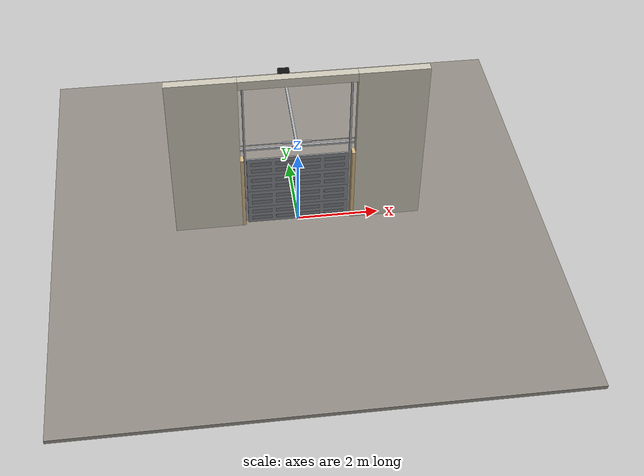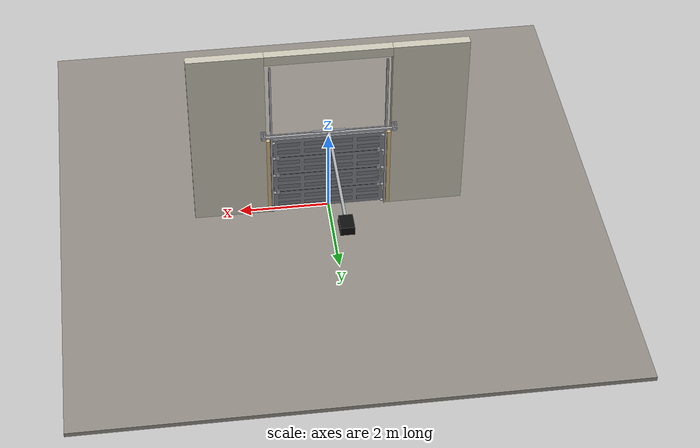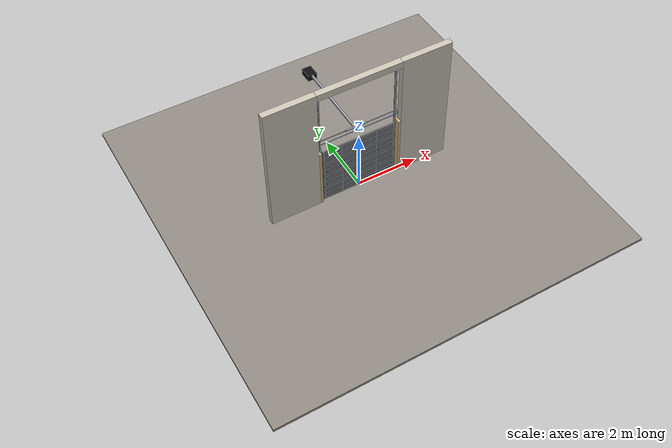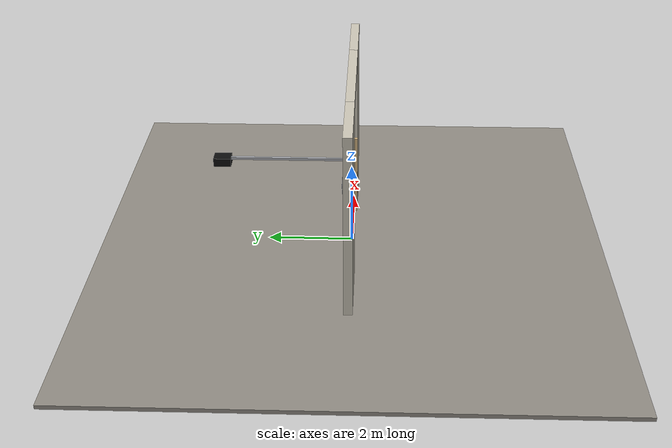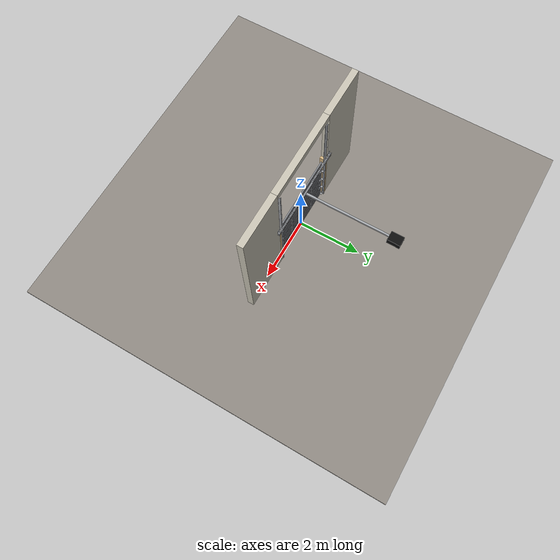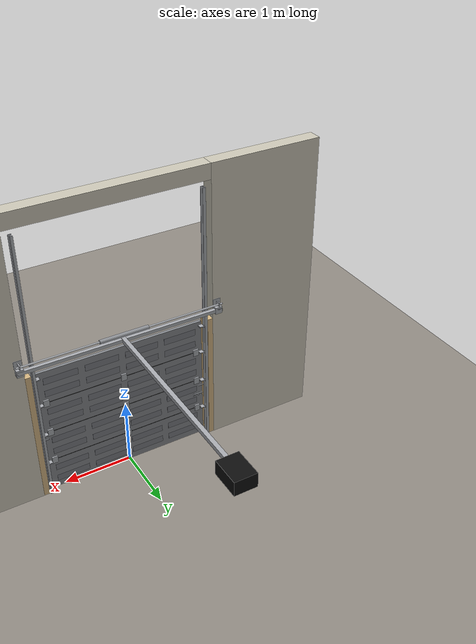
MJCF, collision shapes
<?xml version="1.0" ?>
<mujoco model="db0605_garage_sectional_full">
  <compiler angle="radian" meshdir="../../hardware" texturedir="../../textures" autolimits="true" inertiafromgeom="false"/>
  <option timestep="0.002" integrator="implicitfast" cone="elliptic" impratio="10" noslip_iterations="3">
    <flag multiccd="enable"/>
  </option>
  <size memory="16M"/>
  <default>
    <geom condim="4" solref="0.005 1" solimp="0.95 0.99 0.001"/>
    <joint solreflimit="0.005 1" solimplimit="0.95 0.99 0.001"/>
    <tendon solreflimit="0.005 1"/>
    <equality solref="0.002 1"/>
  </default>
  <visual>
    <headlight ambient="0.4 0.4 0.4" diffuse="0.7 0.7 0.7" specular="0.2 0.2 0.2"/>
    <quality shadowsize="4096"/>
    <map znear="0.01" zfar="60"/>
  </visual>
  <asset>
    <mesh name="lever_01c630149d" file="lever_01c630149d.obj"/>
    <material name="mat_floor" rgba="0.55 0.53 0.5 1" specular="0.2" shininess="0.15" reflectance="0"/>
    <material name="mat_wall" rgba="0.78 0.76 0.7 1" specular="0.2" shininess="0.1" reflectance="0"/>
    <material name="mat_frame" rgba="0.82 0.7 0.5 1" specular="0.2" shininess="0.45" reflectance="0"/>
    <material name="mat_track" rgba="0.65 0.66 0.68 1" specular="0.74" shininess="0.5" reflectance="0.36"/>
    <material name="mat_section_0" rgba="0.5 0.51 0.53 1" specular="0.23" shininess="0.46" reflectance="0.02"/>
    <material name="mat_section_0_panel" rgba="0.46 0.469 0.488 1" specular="0.23" shininess="0.46" reflectance="0.02"/>
    <material name="mat_section_1" rgba="0.5 0.51 0.53 1" specular="0.23" shininess="0.46" reflectance="0.02"/>
    <material name="mat_section_1_panel" rgba="0.46 0.469 0.488 1" specular="0.23" shininess="0.46" reflectance="0.02"/>
    <material name="mat_hinge_line" rgba="0.2 0.2 0.2 1" specular="0.2" shininess="0.3" reflectance="0"/>
    <material name="mat_section_2" rgba="0.5 0.51 0.53 1" specular="0.23" shininess="0.46" reflectance="0.02"/>
    <material name="mat_section_2_panel" rgba="0.46 0.469 0.488 1" specular="0.23" shininess="0.46" reflectance="0.02"/>
    <material name="mat_section_3" rgba="0.5 0.51 0.53 1" specular="0.23" shininess="0.46" reflectance="0.02"/>
    <material name="mat_section_3_panel" rgba="0.46 0.469 0.488 1" specular="0.23" shininess="0.46" reflectance="0.02"/>
    <material name="mat_spring" rgba="0.55 0.56 0.58 1" specular="0.8" shininess="0.55" reflectance="0.4"/>
    <material name="mat_opener" rgba="0.05 0.05 0.05 1" specular="0.38" shininess="0.3" reflectance="0.12"/>
    <material name="mat_op_black_matte_metal" rgba="0.05 0.05 0.05 1" specular="0.38" shininess="0.3" reflectance="0.12"/>
    <material name="mat_trim" rgba="0.85 0.66 0.3 1" specular="0.8" shininess="0.75" reflectance="0.4"/>
    <material name="mat_lockbar" rgba="0.65 0.66 0.68 1" specular="0.74" shininess="0.5" reflectance="0.36"/>
    <material name="mat_slidelock" rgba="0.65 0.66 0.68 1" specular="0.74" shininess="0.5" reflectance="0.36"/>
    <texture name="skybox" type="skybox" builtin="gradient" rgb1="0.6 0.7 0.85" rgb2="0.9 0.92 0.95" width="256" height="256"/>
  </asset>
  <worldbody>
    <light name="sun" pos="1.5 -2.5 4" dir="-0.3 0.5 -0.8" directional="true" diffuse="0.8 0.8 0.8" specular="0.3 0.3 0.3" castshadow="true"/>
    <light name="fill" pos="-1.5 2.5 3" dir="0.3 -0.5 -0.7" directional="true" diffuse="0.35 0.35 0.4" castshadow="false"/>
    <camera name="robot_view" pos="0 -2.959375 1.853625" xyaxes="1 0 0 0 0.26963 0.962964" fovy="52"/>
    <camera name="far_view" pos="0 2.959375 1.853625" xyaxes="-1 0 0 0 -0.26963 0.962964" fovy="52"/>
    <camera name="iso" pos="2.249125 -2.485875 2.327125" xyaxes="0.741536 0.670913 0 -0.242917 0.268487 0.932151" fovy="46"/>
    <camera name="detail_handle" pos="0.2115 -1.1625 1.25" xyaxes="0.975133 0.221621 0 -0.065674 0.288965 0.955084" fovy="38"/>
    <geom name="floor" type="box" size="6 6 0.05" pos="0 0 -0.05" material="mat_floor" group="0" contype="1" conaffinity="1" friction="0.8 0.005 0.0001" density="2400"/>
    <geom name="wall_left" type="box" size="0.8175 0.1 2.175" pos="-2.1825 0 2.175" material="mat_wall" group="0" contype="1" conaffinity="1" friction="0.6 0.005 0.0001" density="800"/>
    <geom name="wall_right" type="box" size="0.8175 0.1 2.175" pos="2.1825 0 2.175" material="mat_wall" group="0" contype="1" conaffinity="1" friction="0.6 0.005 0.0001" density="800"/>
    <geom name="wall_header" type="box" size="1.365 0.1 0.11" pos="0 0 4.24" material="mat_wall" group="0" contype="1" conaffinity="1" friction="0.6 0.005 0.0001" density="800"/>
    <geom name="garage_jamb_l" type="box" size="0.04 0.1 1.025" pos="-1.325 0 1.025" material="mat_frame" group="0" contype="1" conaffinity="1" friction="0.6 0.005 0.0001" density="400"/>
    <geom name="garage_jamb_r" type="box" size="0.04 0.1 1.025" pos="1.325 0 1.025" material="mat_frame" group="0" contype="1" conaffinity="1" friction="0.6 0.005 0.0001" density="400"/>
    <geom name="track_l" type="box" size="0.004 0.033 2.025" pos="-1.27 0.0825 2.025" material="mat_track" group="0" contype="1" conaffinity="1" friction="0.6 0.005 0.0001" density="7850"/>
    <geom name="track_l_flange_n" type="box" size="0.022 0.004 2.025" pos="-1.252 0.0535 2.025" material="mat_track" group="0" contype="1" conaffinity="1" friction="0.6 0.005 0.0001" density="7850"/>
    <geom name="track_l_flange_p" type="box" size="0.022 0.004 2.025" pos="-1.252 0.1115 2.025" material="mat_track" group="0" contype="1" conaffinity="1" friction="0.6 0.005 0.0001" density="7850"/>
    <geom name="track_r" type="box" size="0.004 0.033 2.025" pos="1.27 0.0825 2.025" material="mat_track" group="0" contype="1" conaffinity="1" friction="0.6 0.005 0.0001" density="7850"/>
    <geom name="track_r_flange_n" type="box" size="0.022 0.004 2.025" pos="1.252 0.0535 2.025" material="mat_track" group="0" contype="1" conaffinity="1" friction="0.6 0.005 0.0001" density="7850"/>
    <geom name="track_r_flange_p" type="box" size="0.022 0.004 2.025" pos="1.252 0.1115 2.025" material="mat_track" group="0" contype="1" conaffinity="1" friction="0.6 0.005 0.0001" density="7850"/>
    <geom name="torsion_shaft" type="cylinder" size="0.013 1.475" pos="0 0.17 2.3" quat="0.707107 0 0.707107 0" material="mat_track" group="0" contype="1" conaffinity="1" friction="0.6 0.005 0.0001" density="7850"/>
    <geom name="torsion_spring" type="cylinder" size="0.03 0.35" pos="0 0.17 2.3" quat="0.707107 0 0.707107 0" material="mat_spring" group="1" contype="0" conaffinity="0" density="7850"/>
    <geom name="torsion_bearing_plate_l" type="box" size="0.055 0.004 0.055" pos="-1.425 0.104 2.3" material="mat_track" group="1" contype="0" conaffinity="0" density="7850"/>
    <geom name="torsion_bearing_arm_l" type="box" size="0.008 0.049 0.03" pos="-1.425 0.139 2.3" material="mat_track" group="1" contype="0" conaffinity="0" density="7850"/>
    <geom name="torsion_bearing_plate_r" type="box" size="0.055 0.004 0.055" pos="1.425 0.104 2.3" material="mat_track" group="1" contype="0" conaffinity="0" density="7850"/>
    <geom name="torsion_bearing_arm_r" type="box" size="0.008 0.049 0.03" pos="1.425 0.139 2.3" material="mat_track" group="1" contype="0" conaffinity="0" density="7850"/>
    <geom name="opener_header_angle" type="box" size="1.48 0.025 0.025" pos="0 0.145 2.2" material="mat_track" group="1" contype="0" conaffinity="0" density="7850"/>
    <geom name="opener_header_gusset_l" type="box" size="0.05 0.035 0.05" pos="-1.425 0.135 2.2" material="mat_track" group="1" contype="0" conaffinity="0" density="7850"/>
    <geom name="opener_header_gusset_r" type="box" size="0.05 0.035 0.05" pos="1.425 0.135 2.2" material="mat_track" group="1" contype="0" conaffinity="0" density="7850"/>
    <geom name="opener_rail" type="box" size="0.03 1.44 0.03" pos="0 1.56 2.2" material="mat_track" group="0" contype="1" conaffinity="1" friction="0.6 0.005 0.0001" density="7850"/>
    <geom name="opener_unit" type="box" size="0.15 0.2 0.1" pos="0 3 2.15" material="mat_opener" group="0" contype="1" conaffinity="1" friction="0.6 0.005 0.0001" density="500"/>
    <geom name="slide_lock_keeper_leg_n" type="box" size="0.007 0.0025 0.0155" pos="-1.265 0.034 0.7715" quat="0 0 -0.707107 0.707107" material="mat_track" group="0" contype="1" conaffinity="1" friction="0.6 0.005 0.0001" density="7800"/>
    <geom name="slide_lock_keeper_leg_p" type="box" size="0.007 0.0025 0.0155" pos="-1.265 0.034 0.7485" quat="0 0 -0.707107 0.707107" material="mat_track" group="0" contype="1" conaffinity="1" friction="0.6 0.005 0.0001" density="7800"/>
    <geom name="slide_lock_keeper_bridge" type="box" size="0.007 0.014 0.0025" pos="-1.265 0.021 0.76" quat="0 0 -0.707107 0.707107" material="mat_track" group="0" contype="1" conaffinity="1" friction="0.6 0.005 0.0001" density="7800"/>
    <geom name="slide_lock_keeper_base" type="box" size="0.015 0.02 0.001" pos="-1.265 0.0485 0.76" quat="0 0 -0.707107 0.707107" material="mat_track" group="1" contype="0" conaffinity="0" density="7800"/>
    <site name="approach_point" pos="0 -2 0" quat="1 0 0 0" size="0.05" rgba="0.2 0.9 0.2 0.5" group="4"/>
    <site name="goal_point" pos="0 2 0" quat="1 0 0 0" size="0.05" rgba="0.2 0.9 0.2 0.5" group="4"/>
    <site name="door_plane_center" pos="0 0 1.025" quat="1 0 0 0" size="0.02" rgba="0.2 0.9 0.2 0.5" group="4"/>
    <body name="door" pos="0 0 0">
      <inertial pos="-0.002268 0.011818 1.008917" mass="52.987417" quat="0.707152 -0.707061 -0.000584 -0.000626" diaginertia="16.955953978 34.441994544 51.328871502"/>
      <joint name="door_slide" type="slide" axis="0 0 1" limited="true" range="0 1.95" damping="4.6824" frictionloss="21.044286" stiffness="48.580327" springref="6.5" armature="0.5"/>
      <geom name="section_0_slab" type="box" size="1.22 0.0225 0.25" pos="0 0 0.26" material="mat_section_0" group="0" contype="1" conaffinity="1" friction="0.4 0.005 0.0001" density="1"/>
      <geom name="section_0_panel_0_n" type="box" size="0.2425 0.003 0.05" pos="-0.8775 -0.0255 0.16" material="mat_section_0_panel" group="1" contype="0" conaffinity="0" density="1"/>
      <geom name="section_0_panel_0_p" type="box" size="0.2425 0.003 0.05" pos="-0.8775 0.0255 0.16" material="mat_section_0_panel" group="1" contype="0" conaffinity="0" density="1"/>
      <geom name="section_0_panel_1_n" type="box" size="0.2425 0.003 0.05" pos="-0.2925 -0.0255 0.16" material="mat_section_0_panel" group="1" contype="0" conaffinity="0" density="1"/>
      <geom name="section_0_panel_1_p" type="box" size="0.2425 0.003 0.05" pos="-0.2925 0.0255 0.16" material="mat_section_0_panel" group="1" contype="0" conaffinity="0" density="1"/>
      <geom name="section_0_panel_2_n" type="box" size="0.2425 0.003 0.05" pos="0.2925 -0.0255 0.16" material="mat_section_0_panel" group="1" contype="0" conaffinity="0" density="1"/>
      <geom name="section_0_panel_2_p" type="box" size="0.2425 0.003 0.05" pos="0.2925 0.0255 0.16" material="mat_section_0_panel" group="1" contype="0" conaffinity="0" density="1"/>
      <geom name="section_0_panel_3_n" type="box" size="0.2425 0.003 0.05" pos="0.8775 -0.0255 0.16" material="mat_section_0_panel" group="1" contype="0" conaffinity="0" density="1"/>
      <geom name="section_0_panel_3_p" type="box" size="0.2425 0.003 0.05" pos="0.8775 0.0255 0.16" material="mat_section_0_panel" group="1" contype="0" conaffinity="0" density="1"/>
      <geom name="section_0_panel_4_n" type="box" size="0.2425 0.003 0.05" pos="-0.8775 -0.0255 0.36" material="mat_section_0_panel" group="1" contype="0" conaffinity="0" density="1"/>
      <geom name="section_0_panel_4_p" type="box" size="0.2425 0.003 0.05" pos="-0.8775 0.0255 0.36" material="mat_section_0_panel" group="1" contype="0" conaffinity="0" density="1"/>
      <geom name="section_0_panel_5_n" type="box" size="0.2425 0.003 0.05" pos="-0.2925 -0.0255 0.36" material="mat_section_0_panel" group="1" contype="0" conaffinity="0" density="1"/>
      <geom name="section_0_panel_5_p" type="box" size="0.2425 0.003 0.05" pos="-0.2925 0.0255 0.36" material="mat_section_0_panel" group="1" contype="0" conaffinity="0" density="1"/>
      <geom name="section_0_panel_6_n" type="box" size="0.2425 0.003 0.05" pos="0.2925 -0.0255 0.36" material="mat_section_0_panel" group="1" contype="0" conaffinity="0" density="1"/>
      <geom name="section_0_panel_6_p" type="box" size="0.2425 0.003 0.05" pos="0.2925 0.0255 0.36" material="mat_section_0_panel" group="1" contype="0" conaffinity="0" density="1"/>
      <geom name="section_0_panel_7_n" type="box" size="0.2425 0.003 0.05" pos="0.8775 -0.0255 0.36" material="mat_section_0_panel" group="1" contype="0" conaffinity="0" density="1"/>
      <geom name="section_0_panel_7_p" type="box" size="0.2425 0.003 0.05" pos="0.8775 0.0255 0.36" material="mat_section_0_panel" group="1" contype="0" conaffinity="0" density="1"/>
      <geom name="section_1_slab" type="box" size="1.22 0.0225 0.25" pos="0 0 0.76" material="mat_section_1" group="0" contype="1" conaffinity="1" friction="0.4 0.005 0.0001" density="1"/>
      <geom name="section_1_panel_0_n" type="box" size="0.2425 0.003 0.05" pos="-0.8775 -0.0255 0.66" material="mat_section_1_panel" group="1" contype="0" conaffinity="0" density="1"/>
      <geom name="section_1_panel_0_p" type="box" size="0.2425 0.003 0.05" pos="-0.8775 0.0255 0.66" material="mat_section_1_panel" group="1" contype="0" conaffinity="0" density="1"/>
      <geom name="section_1_panel_1_n" type="box" size="0.2425 0.003 0.05" pos="-0.2925 -0.0255 0.66" material="mat_section_1_panel" group="1" contype="0" conaffinity="0" density="1"/>
      <geom name="section_1_panel_1_p" type="box" size="0.2425 0.003 0.05" pos="-0.2925 0.0255 0.66" material="mat_section_1_panel" group="1" contype="0" conaffinity="0" density="1"/>
      <geom name="section_1_panel_2_n" type="box" size="0.2425 0.003 0.05" pos="0.2925 -0.0255 0.66" material="mat_section_1_panel" group="1" contype="0" conaffinity="0" density="1"/>
      <geom name="section_1_panel_2_p" type="box" size="0.2425 0.003 0.05" pos="0.2925 0.0255 0.66" material="mat_section_1_panel" group="1" contype="0" conaffinity="0" density="1"/>
      <geom name="section_1_panel_3_n" type="box" size="0.2425 0.003 0.05" pos="0.8775 -0.0255 0.66" material="mat_section_1_panel" group="1" contype="0" conaffinity="0" density="1"/>
      <geom name="section_1_panel_3_p" type="box" size="0.2425 0.003 0.05" pos="0.8775 0.0255 0.66" material="mat_section_1_panel" group="1" contype="0" conaffinity="0" density="1"/>
      <geom name="section_1_panel_4_n" type="box" size="0.2425 0.003 0.05" pos="-0.8775 -0.0255 0.86" material="mat_section_1_panel" group="1" contype="0" conaffinity="0" density="1"/>
      <geom name="section_1_panel_4_p" type="box" size="0.2425 0.003 0.05" pos="-0.8775 0.0255 0.86" material="mat_section_1_panel" group="1" contype="0" conaffinity="0" density="1"/>
      <geom name="section_1_panel_5_n" type="box" size="0.2425 0.003 0.05" pos="-0.2925 -0.0255 0.86" material="mat_section_1_panel" group="1" contype="0" conaffinity="0" density="1"/>
      <geom name="section_1_panel_5_p" type="box" size="0.2425 0.003 0.05" pos="-0.2925 0.0255 0.86" material="mat_section_1_panel" group="1" contype="0" conaffinity="0" density="1"/>
      <geom name="section_1_panel_6_n" type="box" size="0.2425 0.003 0.05" pos="0.2925 -0.0255 0.86" material="mat_section_1_panel" group="1" contype="0" conaffinity="0" density="1"/>
      <geom name="section_1_panel_6_p" type="box" size="0.2425 0.003 0.05" pos="0.2925 0.0255 0.86" material="mat_section_1_panel" group="1" contype="0" conaffinity="0" density="1"/>
      <geom name="section_1_panel_7_n" type="box" size="0.2425 0.003 0.05" pos="0.8775 -0.0255 0.86" material="mat_section_1_panel" group="1" contype="0" conaffinity="0" density="1"/>
      <geom name="section_1_panel_7_p" type="box" size="0.2425 0.003 0.05" pos="0.8775 0.0255 0.86" material="mat_section_1_panel" group="1" contype="0" conaffinity="0" density="1"/>
      <geom name="section_hinge_line_1" type="box" size="1.2 0.001 0.004" pos="0 0.0235 0.51" material="mat_hinge_line" group="1" contype="0" conaffinity="0" density="1"/>
      <geom name="section_hinge_1_132" type="box" size="0.04 0.01 0.05" pos="-1.12 0.0325 0.51" material="mat_track" group="1" contype="0" conaffinity="0" density="7850"/>
      <geom name="section_hinge_1_244" type="box" size="0.04 0.01 0.05" pos="0 0.0325 0.51" material="mat_track" group="1" contype="0" conaffinity="0" density="7850"/>
      <geom name="section_hinge_1_355" type="box" size="0.04 0.01 0.05" pos="1.12 0.0325 0.51" material="mat_track" group="1" contype="0" conaffinity="0" density="7850"/>
      <geom name="section_2_slab" type="box" size="1.22 0.0225 0.25" pos="0 0 1.26" material="mat_section_2" group="0" contype="1" conaffinity="1" friction="0.4 0.005 0.0001" density="1"/>
      <geom name="section_2_panel_0_n" type="box" size="0.2425 0.003 0.05" pos="-0.8775 -0.0255 1.16" material="mat_section_2_panel" group="1" contype="0" conaffinity="0" density="1"/>
      <geom name="section_2_panel_0_p" type="box" size="0.2425 0.003 0.05" pos="-0.8775 0.0255 1.16" material="mat_section_2_panel" group="1" contype="0" conaffinity="0" density="1"/>
      <geom name="section_2_panel_1_n" type="box" size="0.2425 0.003 0.05" pos="-0.2925 -0.0255 1.16" material="mat_section_2_panel" group="1" contype="0" conaffinity="0" density="1"/>
      <geom name="section_2_panel_1_p" type="box" size="0.2425 0.003 0.05" pos="-0.2925 0.0255 1.16" material="mat_section_2_panel" group="1" contype="0" conaffinity="0" density="1"/>
      <geom name="section_2_panel_2_n" type="box" size="0.2425 0.003 0.05" pos="0.2925 -0.0255 1.16" material="mat_section_2_panel" group="1" contype="0" conaffinity="0" density="1"/>
      <geom name="section_2_panel_2_p" type="box" size="0.2425 0.003 0.05" pos="0.2925 0.0255 1.16" material="mat_section_2_panel" group="1" contype="0" conaffinity="0" density="1"/>
      <geom name="section_2_panel_3_n" type="box" size="0.2425 0.003 0.05" pos="0.8775 -0.0255 1.16" material="mat_section_2_panel" group="1" contype="0" conaffinity="0" density="1"/>
      <geom name="section_2_panel_3_p" type="box" size="0.2425 0.003 0.05" pos="0.8775 0.0255 1.16" material="mat_section_2_panel" group="1" contype="0" conaffinity="0" density="1"/>
      <geom name="section_2_panel_4_n" type="box" size="0.2425 0.003 0.05" pos="-0.8775 -0.0255 1.36" material="mat_section_2_panel" group="1" contype="0" conaffinity="0" density="1"/>
      <geom name="section_2_panel_4_p" type="box" size="0.2425 0.003 0.05" pos="-0.8775 0.0255 1.36" material="mat_section_2_panel" group="1" contype="0" conaffinity="0" density="1"/>
      <geom name="section_2_panel_5_n" type="box" size="0.2425 0.003 0.05" pos="-0.2925 -0.0255 1.36" material="mat_section_2_panel" group="1" contype="0" conaffinity="0" density="1"/>
      <geom name="section_2_panel_5_p" type="box" size="0.2425 0.003 0.05" pos="-0.2925 0.0255 1.36" material="mat_section_2_panel" group="1" contype="0" conaffinity="0" density="1"/>
      <geom name="section_2_panel_6_n" type="box" size="0.2425 0.003 0.05" pos="0.2925 -0.0255 1.36" material="mat_section_2_panel" group="1" contype="0" conaffinity="0" density="1"/>
      <geom name="section_2_panel_6_p" type="box" size="0.2425 0.003 0.05" pos="0.2925 0.0255 1.36" material="mat_section_2_panel" group="1" contype="0" conaffinity="0" density="1"/>
      <geom name="section_2_panel_7_n" type="box" size="0.2425 0.003 0.05" pos="0.8775 -0.0255 1.36" material="mat_section_2_panel" group="1" contype="0" conaffinity="0" density="1"/>
      <geom name="section_2_panel_7_p" type="box" size="0.2425 0.003 0.05" pos="0.8775 0.0255 1.36" material="mat_section_2_panel" group="1" contype="0" conaffinity="0" density="1"/>
      <geom name="section_hinge_line_2" type="box" size="1.2 0.001 0.004" pos="0 0.0235 1.01" material="mat_hinge_line" group="1" contype="0" conaffinity="0" density="1"/>
      <geom name="section_hinge_2_132" type="box" size="0.04 0.01 0.05" pos="-1.12 0.0325 1.01" material="mat_track" group="1" contype="0" conaffinity="0" density="7850"/>
      <geom name="section_hinge_2_244" type="box" size="0.04 0.01 0.05" pos="0 0.0325 1.01" material="mat_track" group="1" contype="0" conaffinity="0" density="7850"/>
      <geom name="section_hinge_2_355" type="box" size="0.04 0.01 0.05" pos="1.12 0.0325 1.01" material="mat_track" group="1" contype="0" conaffinity="0" density="7850"/>
      <geom name="section_3_slab" type="box" size="1.22 0.0225 0.25" pos="0 0 1.76" material="mat_section_3" group="0" contype="1" conaffinity="1" friction="0.4 0.005 0.0001" density="1"/>
      <geom name="section_3_panel_0_n" type="box" size="0.2425 0.003 0.05" pos="-0.8775 -0.0255 1.66" material="mat_section_3_panel" group="1" contype="0" conaffinity="0" density="1"/>
      <geom name="section_3_panel_0_p" type="box" size="0.2425 0.003 0.05" pos="-0.8775 0.0255 1.66" material="mat_section_3_panel" group="1" contype="0" conaffinity="0" density="1"/>
      <geom name="section_3_panel_1_n" type="box" size="0.2425 0.003 0.05" pos="-0.2925 -0.0255 1.66" material="mat_section_3_panel" group="1" contype="0" conaffinity="0" density="1"/>
      <geom name="section_3_panel_1_p" type="box" size="0.2425 0.003 0.05" pos="-0.2925 0.0255 1.66" material="mat_section_3_panel" group="1" contype="0" conaffinity="0" density="1"/>
      <geom name="section_3_panel_2_n" type="box" size="0.2425 0.003 0.05" pos="0.2925 -0.0255 1.66" material="mat_section_3_panel" group="1" contype="0" conaffinity="0" density="1"/>
      <geom name="section_3_panel_2_p" type="box" size="0.2425 0.003 0.05" pos="0.2925 0.0255 1.66" material="mat_section_3_panel" group="1" contype="0" conaffinity="0" density="1"/>
      <geom name="section_3_panel_3_n" type="box" size="0.2425 0.003 0.05" pos="0.8775 -0.0255 1.66" material="mat_section_3_panel" group="1" contype="0" conaffinity="0" density="1"/>
      <geom name="section_3_panel_3_p" type="box" size="0.2425 0.003 0.05" pos="0.8775 0.0255 1.66" material="mat_section_3_panel" group="1" contype="0" conaffinity="0" density="1"/>
      <geom name="section_3_panel_4_n" type="box" size="0.2425 0.003 0.05" pos="-0.8775 -0.0255 1.86" material="mat_section_3_panel" group="1" contype="0" conaffinity="0" density="1"/>
      <geom name="section_3_panel_4_p" type="box" size="0.2425 0.003 0.05" pos="-0.8775 0.0255 1.86" material="mat_section_3_panel" group="1" contype="0" conaffinity="0" density="1"/>
      <geom name="section_3_panel_5_n" type="box" size="0.2425 0.003 0.05" pos="-0.2925 -0.0255 1.86" material="mat_section_3_panel" group="1" contype="0" conaffinity="0" density="1"/>
      <geom name="section_3_panel_5_p" type="box" size="0.2425 0.003 0.05" pos="-0.2925 0.0255 1.86" material="mat_section_3_panel" group="1" contype="0" conaffinity="0" density="1"/>
      <geom name="section_3_panel_6_n" type="box" size="0.2425 0.003 0.05" pos="0.2925 -0.0255 1.86" material="mat_section_3_panel" group="1" contype="0" conaffinity="0" density="1"/>
      <geom name="section_3_panel_6_p" type="box" size="0.2425 0.003 0.05" pos="0.2925 0.0255 1.86" material="mat_section_3_panel" group="1" contype="0" conaffinity="0" density="1"/>
      <geom name="section_3_panel_7_n" type="box" size="0.2425 0.003 0.05" pos="0.8775 -0.0255 1.86" material="mat_section_3_panel" group="1" contype="0" conaffinity="0" density="1"/>
      <geom name="section_3_panel_7_p" type="box" size="0.2425 0.003 0.05" pos="0.8775 0.0255 1.86" material="mat_section_3_panel" group="1" contype="0" conaffinity="0" density="1"/>
      <geom name="section_hinge_line_3" type="box" size="1.2 0.001 0.004" pos="0 0.0235 1.51" material="mat_hinge_line" group="1" contype="0" conaffinity="0" density="1"/>
      <geom name="section_hinge_3_132" type="box" size="0.04 0.01 0.05" pos="-1.12 0.0325 1.51" material="mat_track" group="1" contype="0" conaffinity="0" density="7850"/>
      <geom name="section_hinge_3_244" type="box" size="0.04 0.01 0.05" pos="0 0.0325 1.51" material="mat_track" group="1" contype="0" conaffinity="0" density="7850"/>
      <geom name="section_hinge_3_355" type="box" size="0.04 0.01 0.05" pos="1.12 0.0325 1.51" material="mat_track" group="1" contype="0" conaffinity="0" density="7850"/>
      <geom name="roller_l_0" type="cylinder" size="0.025 0.01" pos="-1.25 0.0825 0.04" quat="0.707107 0 0.707107 0" material="mat_track" group="1" contype="0" conaffinity="0" density="7850"/>
      <geom name="roller_stem_l_0" type="cylinder" size="0.006 0.027" pos="-1.225 0.0825 0.04" quat="0.707107 0 0.707107 0" material="mat_track" group="1" contype="0" conaffinity="0" density="7850"/>
      <geom name="roller_arm_l_0" type="box" size="0.03 0.03 0.006" pos="-1.2 0.0525 0.04" material="mat_track" group="1" contype="0" conaffinity="0" density="7850"/>
      <geom name="roller_l_1" type="cylinder" size="0.025 0.01" pos="-1.25 0.0825 0.51" quat="0.707107 0 0.707107 0" material="mat_track" group="1" contype="0" conaffinity="0" density="7850"/>
      <geom name="roller_stem_l_1" type="cylinder" size="0.006 0.027" pos="-1.225 0.0825 0.51" quat="0.707107 0 0.707107 0" material="mat_track" group="1" contype="0" conaffinity="0" density="7850"/>
      <geom name="roller_arm_l_1" type="box" size="0.03 0.03 0.006" pos="-1.2 0.0525 0.51" material="mat_track" group="1" contype="0" conaffinity="0" density="7850"/>
      <geom name="roller_l_2" type="cylinder" size="0.025 0.01" pos="-1.25 0.0825 1.01" quat="0.707107 0 0.707107 0" material="mat_track" group="1" contype="0" conaffinity="0" density="7850"/>
      <geom name="roller_stem_l_2" type="cylinder" size="0.006 0.027" pos="-1.225 0.0825 1.01" quat="0.707107 0 0.707107 0" material="mat_track" group="1" contype="0" conaffinity="0" density="7850"/>
      <geom name="roller_arm_l_2" type="box" size="0.03 0.03 0.006" pos="-1.2 0.0525 1.01" material="mat_track" group="1" contype="0" conaffinity="0" density="7850"/>
      <geom name="roller_l_3" type="cylinder" size="0.025 0.01" pos="-1.25 0.0825 1.51" quat="0.707107 0 0.707107 0" material="mat_track" group="1" contype="0" conaffinity="0" density="7850"/>
      <geom name="roller_stem_l_3" type="cylinder" size="0.006 0.027" pos="-1.225 0.0825 1.51" quat="0.707107 0 0.707107 0" material="mat_track" group="1" contype="0" conaffinity="0" density="7850"/>
      <geom name="roller_arm_l_3" type="box" size="0.03 0.03 0.006" pos="-1.2 0.0525 1.51" material="mat_track" group="1" contype="0" conaffinity="0" density="7850"/>
      <geom name="roller_l_4" type="cylinder" size="0.025 0.01" pos="-1.25 0.0825 1.95" quat="0.707107 0 0.707107 0" material="mat_track" group="1" contype="0" conaffinity="0" density="7850"/>
      <geom name="roller_stem_l_4" type="cylinder" size="0.006 0.027" pos="-1.225 0.0825 1.95" quat="0.707107 0 0.707107 0" material="mat_track" group="1" contype="0" conaffinity="0" density="7850"/>
      <geom name="roller_arm_l_4" type="box" size="0.03 0.03 0.006" pos="-1.2 0.0525 1.95" material="mat_track" group="1" contype="0" conaffinity="0" density="7850"/>
      <geom name="roller_r_0" type="cylinder" size="0.025 0.01" pos="1.25 0.0825 0.04" quat="0.707107 0 0.707107 0" material="mat_track" group="1" contype="0" conaffinity="0" density="7850"/>
      <geom name="roller_stem_r_0" type="cylinder" size="0.006 0.027" pos="1.225 0.0825 0.04" quat="0.707107 0 0.707107 0" material="mat_track" group="1" contype="0" conaffinity="0" density="7850"/>
      <geom name="roller_arm_r_0" type="box" size="0.03 0.03 0.006" pos="1.2 0.0525 0.04" material="mat_track" group="1" contype="0" conaffinity="0" density="7850"/>
      <geom name="roller_r_1" type="cylinder" size="0.025 0.01" pos="1.25 0.0825 0.51" quat="0.707107 0 0.707107 0" material="mat_track" group="1" contype="0" conaffinity="0" density="7850"/>
      <geom name="roller_stem_r_1" type="cylinder" size="0.006 0.027" pos="1.225 0.0825 0.51" quat="0.707107 0 0.707107 0" material="mat_track" group="1" contype="0" conaffinity="0" density="7850"/>
      <geom name="roller_arm_r_1" type="box" size="0.03 0.03 0.006" pos="1.2 0.0525 0.51" material="mat_track" group="1" contype="0" conaffinity="0" density="7850"/>
      <geom name="roller_r_2" type="cylinder" size="0.025 0.01" pos="1.25 0.0825 1.01" quat="0.707107 0 0.707107 0" material="mat_track" group="1" contype="0" conaffinity="0" density="7850"/>
      <geom name="roller_stem_r_2" type="cylinder" size="0.006 0.027" pos="1.225 0.0825 1.01" quat="0.707107 0 0.707107 0" material="mat_track" group="1" contype="0" conaffinity="0" density="7850"/>
      <geom name="roller_arm_r_2" type="box" size="0.03 0.03 0.006" pos="1.2 0.0525 1.01" material="mat_track" group="1" contype="0" conaffinity="0" density="7850"/>
      <geom name="roller_r_3" type="cylinder" size="0.025 0.01" pos="1.25 0.0825 1.51" quat="0.707107 0 0.707107 0" material="mat_track" group="1" contype="0" conaffinity="0" density="7850"/>
      <geom name="roller_stem_r_3" type="cylinder" size="0.006 0.027" pos="1.225 0.0825 1.51" quat="0.707107 0 0.707107 0" material="mat_track" group="1" contype="0" conaffinity="0" density="7850"/>
      <geom name="roller_arm_r_3" type="box" size="0.03 0.03 0.006" pos="1.2 0.0525 1.51" material="mat_track" group="1" contype="0" conaffinity="0" density="7850"/>
      <geom name="roller_r_4" type="cylinder" size="0.025 0.01" pos="1.25 0.0825 1.95" quat="0.707107 0 0.707107 0" material="mat_track" group="1" contype="0" conaffinity="0" density="7850"/>
      <geom name="roller_stem_r_4" type="cylinder" size="0.006 0.027" pos="1.225 0.0825 1.95" quat="0.707107 0 0.707107 0" material="mat_track" group="1" contype="0" conaffinity="0" density="7850"/>
      <geom name="roller_arm_r_4" type="box" size="0.03 0.03 0.006" pos="1.2 0.0525 1.95" material="mat_track" group="1" contype="0" conaffinity="0" density="7850"/>
      <geom name="garage_slide_lock_plate" type="box" size="0.0745 0.019 0.001" pos="-1.1375 0.0235 0.76" quat="0 0 0.707107 0.707107" material="mat_slidelock" group="1" contype="0" conaffinity="0" density="7800"/>
      <geom name="garage_slide_lock_guide_0_leg_n" type="box" size="0.006 0.002 0.0115" pos="-1.204 0.034 0.749" quat="0 0 0.707107 0.707107" material="mat_slidelock" group="1" contype="0" conaffinity="0" density="7800"/>
      <geom name="garage_slide_lock_guide_0_leg_p" type="box" size="0.006 0.002 0.0115" pos="-1.204 0.034 0.771" quat="0 0 0.707107 0.707107" material="mat_slidelock" group="1" contype="0" conaffinity="0" density="7800"/>
      <geom name="garage_slide_lock_guide_0_bridge" type="box" size="0.006 0.013 0.002" pos="-1.204 0.0435 0.76" quat="0 0 0.707107 0.707107" material="mat_slidelock" group="1" contype="0" conaffinity="0" density="7800"/>
      <geom name="garage_slide_lock_guide_1_leg_n" type="box" size="0.006 0.002 0.0115" pos="-1.073 0.034 0.749" quat="0 0 0.707107 0.707107" material="mat_slidelock" group="1" contype="0" conaffinity="0" density="7800"/>
      <geom name="garage_slide_lock_guide_1_leg_p" type="box" size="0.006 0.002 0.0115" pos="-1.073 0.034 0.771" quat="0 0 0.707107 0.707107" material="mat_slidelock" group="1" contype="0" conaffinity="0" density="7800"/>
      <geom name="garage_slide_lock_guide_1_bridge" type="box" size="0.006 0.013 0.002" pos="-1.073 0.0435 0.76" quat="0 0 0.707107 0.707107" material="mat_slidelock" group="1" contype="0" conaffinity="0" density="7800"/>
      <body name="t_handle" pos="0 0 0.9">
        <inertial pos="0 -0.043758 0" mass="0.321518" quat="0.707107 0 0 -0.707107" diaginertia="0.000208692 0.000223196 0.000404264"/>
        <joint name="t_handle_hinge" type="hinge" axis="0 -1 0" limited="true" range="0 1.5708" damping="0.127804" frictionloss="0.028" stiffness="0.4" springref="-0.75" armature="0.01"/>
        <geom name="t_handle_spindle" type="cylinder" size="0.006 0.0305" pos="0 0 0" quat="0.707107 -0.707107 0 0" material="mat_op_black_matte_metal" group="1" contype="0" conaffinity="0" density="7850"/>
        <geom name="t_handle_t_n" type="mesh" mesh="lever_01c630149d" pos="0 -0.0225 0" quat="0.707107 0.707107 0 0" material="mat_op_black_matte_metal" group="1" contype="0" conaffinity="0" density="3000"/>
        <geom name="t_handle_t_col_n" type="box" size="0.055 0.008 0.008" pos="0 -0.0625 0" material="mat_op_black_matte_metal" group="3" contype="1" conaffinity="1" rgba="0.8 0.3 0.3 0.25" friction="0.6 0.005 0.0001" density="3000"/>
        <geom name="t_handle_cylinder_n" type="cylinder" size="0.0085 0.004" pos="0 -0.0725 0" quat="0.707107 -0.707107 0 0" material="mat_trim" group="1" contype="0" conaffinity="0" density="7100"/>
        <site name="t_handle_grip_n" pos="-0.0385 -0.0625 0" quat="1 0 0 0" size="0.012" rgba="0.2 0.9 0.2 0.5" group="4"/>
      </body>
      <body name="lock_bar_l" pos="-1.17 0.03 0.9">
        <inertial pos="-0.04 0 0" mass="0.095884" quat="0 0 0.707107 0.707107" diaginertia="0.0000017 0.00009424 0.00009424"/>
        <joint name="lock_bar_l_slide" type="slide" axis="1 0 0" limited="true" range="0 0.03" damping="2" frictionloss="1" armature="0.1"/>
        <geom name="lock_bar_l_geom" type="capsule" size="0.006 0.05" pos="-0.04 0 0" quat="0.707107 0 0.707107 0" material="mat_lockbar" group="1" contype="0" conaffinity="0" density="7850"/>
      </body>
      <body name="lock_bar_r" pos="1.17 0.03 0.9">
        <inertial pos="0.04 0 0" mass="0.095884" quat="0 0 0.707107 0.707107" diaginertia="0.0000017 0.00009424 0.00009424"/>
        <joint name="lock_bar_r_slide" type="slide" axis="-1 0 0" limited="true" range="0 0.03" damping="2" frictionloss="1" armature="0.1"/>
        <geom name="lock_bar_r_geom" type="capsule" size="0.006 0.05" pos="0.04 0 0" quat="0.707107 0 0.707107 0" material="mat_lockbar" group="1" contype="0" conaffinity="0" density="7850"/>
      </body>
      <body name="garage_slide_lock" pos="-1.22 0.0325 0.76">
        <inertial pos="0.076803 0.003734 0" mass="0.147296" quat="0.999918 0 0 0.012811" diaginertia="0.000014058 0.000190091 0.000201622"/>
        <joint name="garage_slide_lock_slide" type="slide" axis="1 0 0" limited="true" range="0 0.05" damping="1" frictionloss="1" armature="0.1" ref="0.05"/>
        <geom name="garage_slide_lock_rod" type="capsule" size="0.006 0.064" pos="0.075 0 0" quat="0.707107 0 -0.707107 0" material="mat_slidelock" group="0" contype="1" conaffinity="1" friction="0.6 0.005 0.0001" density="7850"/>
        <geom name="garage_slide_lock_knob" type="capsule" size="0.005 0.01" pos="0.085 0.015 0" quat="0.707107 -0.707107 0 0" material="mat_slidelock" group="0" contype="1" conaffinity="1" friction="0.6 0.005 0.0001" density="7850"/>
        <geom name="garage_slide_lock_knob_end" type="sphere" size="0.00675" pos="0.085 0.03 0" material="mat_slidelock" group="1" contype="0" conaffinity="0" density="7850"/>
        <site name="slide_lock_grip" pos="0.085 0.034 0" quat="1 0 0 0" size="0.012" rgba="0.2 0.9 0.2 0.5" group="4"/>
      </body>
    </body>
  </worldbody>
  <equality>
    <joint name="lock_bar_l_couple" joint1="lock_bar_l_slide" joint2="t_handle_hinge" polycoef="0 0.019099 0 0 0" active="true"/>
    <joint name="lock_bar_r_couple" joint1="lock_bar_r_slide" joint2="t_handle_hinge" polycoef="0 0.019099 0 0 0" active="true"/>
  </equality>
  <sensor>
    <jointpos name="door_slide_pos" joint="door_slide"/>
    <jointvel name="door_slide_vel" joint="door_slide"/>
    <jointpos name="t_handle_hinge_pos" joint="t_handle_hinge"/>
    <jointvel name="t_handle_hinge_vel" joint="t_handle_hinge"/>
    <jointpos name="lock_bar_l_slide_pos" joint="lock_bar_l_slide"/>
    <jointvel name="lock_bar_l_slide_vel" joint="lock_bar_l_slide"/>
    <jointpos name="lock_bar_r_slide_pos" joint="lock_bar_r_slide"/>
    <jointvel name="lock_bar_r_slide_vel" joint="lock_bar_r_slide"/>
    <jointpos name="garage_slide_lock_slide_pos" joint="garage_slide_lock_slide"/>
    <jointvel name="garage_slide_lock_slide_vel" joint="garage_slide_lock_slide"/>
  </sensor>
</mujoco>
